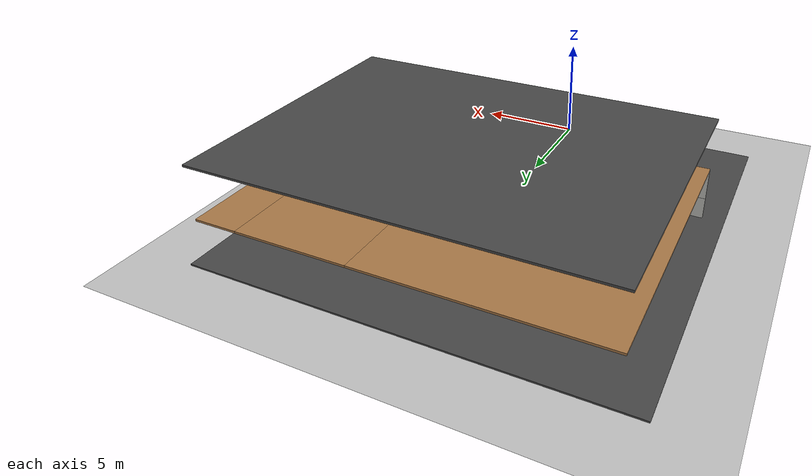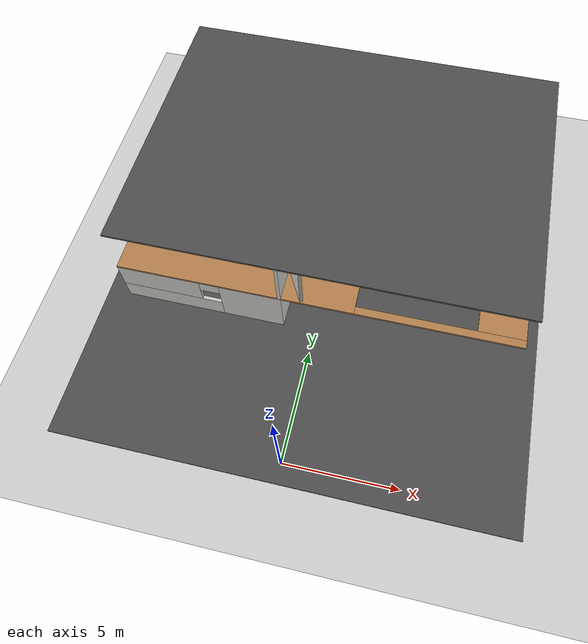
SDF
<sdf version="1.6">
 <world name="default">
  <model name="ground_plane">
   <static>1</static>
   <link name="link">
    <collision name="collision">
     <geometry><plane><normal>0 0 1</normal><size>100 100</size></plane></geometry>
     <surface>
      <contact><collide_bitmask>65535</collide_bitmask></contact>
      <friction><ode><mu>100</mu><mu2>50</mu2></ode></friction>
     </surface>
    </collision>
    <visual name="visual">
     <cast_shadows>0</cast_shadows>
     <geometry><plane><normal>0 0 1</normal><size>100 100</size></plane></geometry>
     <material>
      <script><uri>file://media/materials/scripts/gazebo.material</uri><name>Gazebo/Grey</name></script>
     </material>
    </visual>
   </link>
  </model>
  <model name="asphalt_plane">
   <static>1</static>
   <link name="link">
    <collision name="collision"><geometry><box><size>18.0246 12.9845 0.1</size></box></geometry></collision>
    <visual name="visual">
     <cast_shadows>0</cast_shadows>
     <geometry><box><size>18.0246 12.9845 0.1</size></box></geometry>
     <material>
      <script>
       <uri>model://asphalt_plane/materials/scripts</uri>
       <uri>model://asphalt_plane/materials/textures</uri>
       <name>vrc/asphalt</name>
      </script>
     </material>
    </visual>
   </link>
   <pose>0.009253 12.617 5.05625 0 -0 0</pose>
  </model>
  <model name="Indoor_Scenario1">
   <pose>0.016123 12.6195 0 0 -0 0</pose>
   <link name="Floor_0">
    <pose>-0 -0 2.5 0 -0 0</pose>
    <visual name="Floor_0_Visual_0">
     <pose>-3.6411 0 0.05 0 -0 0</pose>
     <geometry><box><size>10.7178 13 0.1</size></box></geometry>
     <material>
      <script><uri>file://media/materials/scripts/gazebo.material</uri><name>Gazebo/Wood</name></script>
      <ambient>1 1 1 1</ambient>
     </material>
     <meta><layer>1</layer></meta>
    </visual>
    <collision name="Floor_0_Collision_0">
     <geometry><box><size>10.7178 13 0.1</size></box></geometry>
     <pose>-3.6411 0 0.05 0 -0 0</pose>
    </collision>
    <visual name="Floor_0_Visual_1">
     <pose>5.3589 -6.32413 0.05 0 -0 0</pose>
     <geometry><box><size>7.2822 0.351742 0.1</size></box></geometry>
     <material>
      <script><uri>file://media/materials/scripts/gazebo.material</uri><name>Gazebo/Wood</name></script>
      <ambient>1 1 1 1</ambient>
     </material>
     <meta><layer>1</layer></meta>
    </visual>
    <collision name="Floor_0_Collision_1">
     <geometry><box><size>7.2822 0.351742 0.1</size></box></geometry>
     <pose>5.3589 -6.32413 0.05 0 -0 0</pose>
    </collision>
    <visual name="Floor_0_Visual_2">
     <pose>7.97998 0.175871 0.05 0 -0 0</pose>
     <geometry><box><size>2.04005 12.6483 0.1</size></box></geometry>
     <material>
      <script><uri>file://media/materials/scripts/gazebo.material</uri><name>Gazebo/Wood</name></script>
      <ambient>1 1 1 1</ambient>
     </material>
     <meta><layer>1</layer></meta>
    </visual>
    <collision name="Floor_0_Collision_2">
     <geometry><box><size>2.04005 12.6483 0.1</size></box></geometry>
     <pose>7.97998 0.175871 0.05 0 -0 0</pose>
    </collision>
    <visual name="Floor_0_Visual_3">
     <pose>4.33888 1.02587 0.05 0 -0 0</pose>
     <geometry><box><size>5.24215 10.9483 0.1</size></box></geometry>
     <material>
      <script><uri>file://media/materials/scripts/gazebo.material</uri><name>Gazebo/Wood</name></script>
      <ambient>1 1 1 1</ambient>
     </material>
     <meta><layer>1</layer></meta>
    </visual>
    <collision name="Floor_0_Collision_3">
     <geometry><box><size>5.24215 10.9483 0.1</size></box></geometry>
     <pose>4.33888 1.02587 0.05 0 -0 0</pose>
    </collision>
   </link>
   <link name="Wall_0">
    <pose>-5.25 -6.425 0 0 -0 3.14159</pose>
    <visual name="Wall_0_Visual_0">
     <pose>-2.33577 0 1.25 0 -0 0</pose>
     <geometry><box><size>2.82847 0.15 2.5</size></box></geometry>
     <material>
      <script><uri>file://media/materials/scripts/gazebo.material</uri><name>Gazebo/CeilingTiled</name></script>
      <ambient>0.647059 0.505882 0.309804 1</ambient>
     </material>
     <meta><layer>0</layer></meta>
    </visual>
    <collision name="Wall_0_Collision_0">
     <geometry><box><size>2.82847 0.15 2.5</size></box></geometry>
     <pose>-2.33577 0 1.25 0 -0 0</pose>
    </collision>
    <visual name="Wall_0_Visual_1">
     <pose>1.41423 0 0.55 0 -0 0</pose>
     <geometry><box><size>4.67153 0.15 1.1</size></box></geometry>
     <material>
      <script><uri>file://media/materials/scripts/gazebo.material</uri><name>Gazebo/CeilingTiled</name></script>
      <ambient>0.647059 0.505882 0.309804 1</ambient>
     </material>
     <meta><layer>0</layer></meta>
    </visual>
    <collision name="Wall_0_Collision_1">
     <geometry><box><size>4.67153 0.15 1.1</size></box></geometry>
     <pose>1.41423 0 0.55 0 -0 0</pose>
    </collision>
    <visual name="Wall_0_Visual_2">
     <pose>1.86423 0 1.8 0 -0 0</pose>
     <geometry><box><size>3.77153 0.15 1.4</size></box></geometry>
     <material>
      <script><uri>file://media/materials/scripts/gazebo.material</uri><name>Gazebo/CeilingTiled</name></script>
      <ambient>0.647059 0.505882 0.309804 1</ambient>
     </material>
     <meta><layer>0</layer></meta>
    </visual>
    <collision name="Wall_0_Collision_2">
     <geometry><box><size>3.77153 0.15 1.4</size></box></geometry>
     <pose>1.86423 0 1.8 0 -0 0</pose>
    </collision>
    <visual name="Wall_0_Visual_3">
     <pose>-0.471532 0 2.2 0 -0 0</pose>
     <geometry><box><size>0.9 0.15 0.6</size></box></geometry>
     <material>
      <script><uri>file://media/materials/scripts/gazebo.material</uri><name>Gazebo/CeilingTiled</name></script>
      <ambient>0.647059 0.505882 0.309804 1</ambient>
     </material>
     <meta><layer>0</layer></meta>
    </visual>
    <collision name="Wall_0_Collision_3">
     <geometry><box><size>0.9 0.15 0.6</size></box></geometry>
     <pose>-0.471532 0 2.2 0 -0 0</pose>
    </collision>
   </link>
   <link name="Wall_10">
    <collision name="Wall_10_Collision">
     <geometry><box><size>4.25 0.15 2.5</size></box></geometry>
     <pose>0 0 1.25 0 -0 0</pose>
    </collision>
    <visual name="Wall_10_Visual">
     <pose>0 0 1.25 0 -0 0</pose>
     <geometry><box><size>4.25 0.15 2.5</size></box></geometry>
     <material>
      <script><uri>file://media/materials/scripts/gazebo.material</uri><name>Gazebo/CeilingTiled</name></script>
      <ambient>0.647059 0.505882 0.309804 1</ambient>
     </material>
     <meta><layer>0</layer></meta>
    </visual>
    <pose>-1.575 -4.375 0 0 -0 1.5708</pose>
   </link>
   <link name="Wall_12">
    <collision name="Wall_12_Collision">
     <geometry><box><size>2 0.15 2.5</size></box></geometry>
     <pose>0 0 1.25 0 -0 0</pose>
    </collision>
    <visual name="Wall_12_Visual">
     <pose>0 0 1.25 0 -0 0</pose>
     <geometry><box><size>2 0.15 2.5</size></box></geometry>
     <material>
      <script><uri>file://media/materials/scripts/gazebo.material</uri><name>Gazebo/CeilingTiled</name></script>
      <ambient>1 1 1 1</ambient>
     </material>
     <meta><layer>0</layer></meta>
    </visual>
    <pose>-2.5 -2.325 0 0 -0 3.14159</pose>
   </link>
   <link name="Wall_63">
    <collision name="Wall_63_Collision">
     <geometry><box><size>4.25 0.15 2.5</size></box></geometry>
     <pose>0 0 1.25 0 -0 0</pose>
    </collision>
    <visual name="Wall_63_Visual">
     <pose>0 0 1.25 0 -0 0</pose>
     <geometry><box><size>4.25 0.15 2.5</size></box></geometry>
     <material>
      <script><uri>file://media/materials/scripts/gazebo.material</uri><name>Gazebo/CeilingTiled</name></script>
      <ambient>1 1 1 1</ambient>
     </material>
     <meta><layer>1</layer></meta>
    </visual>
    <pose>-1.575 -4.375 2.5 0 -0 1.5708</pose>
   </link>
   <link name="Wall_64">
    <collision name="Wall_64_Collision">
     <geometry><box><size>3 0.15 2.5</size></box></geometry>
     <pose>0 0 1.25 0 -0 0</pose>
    </collision>
    <visual name="Wall_64_Visual">
     <pose>0 0 1.25 0 -0 0</pose>
     <geometry><box><size>3 0.15 2.5</size></box></geometry>
     <material>
      <script><uri>file://media/materials/scripts/gazebo.material</uri><name>Gazebo/CeilingTiled</name></script>
      <ambient>1 1 1 1</ambient>
     </material>
     <meta><layer>1</layer></meta>
    </visual>
    <pose>-3 -2.325 2.5 0 -0 3.14159</pose>
   </link>
   <link name="Wall_89">
    <collision name="Wall_89_Collision">
     <geometry><box><size>2 0.15 2.5</size></box></geometry>
     <pose>0 0 1.25 0 -0 0</pose>
    </collision>
    <visual name="Wall_89_Visual">
     <pose>0 0 1.25 0 -0 0</pose>
     <geometry><box><size>2 0.15 2.5</size></box></geometry>
     <material>
      <script><uri>file://media/materials/scripts/gazebo.material</uri><name>Gazebo/CeilingTiled</name></script>
      <ambient>1 1 1 1</ambient>
     </material>
     <meta><layer>1</layer></meta>
    </visual>
    <pose>-1.08545 -5.56938 2.5 0 -0 -1.0472</pose>
   </link>
   <static>1</static>
  </model>
  <model name="asphalt_plane_0">
   <static>1</static>
   <link name="link">
    <collision name="collision"><geometry><box><size>20 20 0.1</size></box></geometry></collision>
    <visual name="visual">
     <cast_shadows>0</cast_shadows>
     <geometry><box><size>20 20 0.1</size></box></geometry>
     <material>
      <script>
       <uri>model://asphalt_plane/materials/scripts</uri>
       <uri>model://asphalt_plane/materials/textures</uri>
       <name>vrc/asphalt</name>
      </script>
     </material>
    </visual>
   </link>
   <pose>-0.003889 9.12511 0 0 -0 0</pose>
  </model>
  <model name="marker34_box">
   <link name="marker">
    <inertial>
     <mass>0.1</mass>
     <inertia><ixx>0</ixx><ixy>0</ixy><ixz>0</ixz><iyy>0</iyy><iyz>0</iyz><izz>0</izz></inertia>
    </inertial>
    <self_collide>1</self_collide>
    <pose>0 0 0.25 0 -0 0</pose>
    <visual name="visual">
     <geometry><box><size>1 0.001 1</size></box></geometry>
     <material>
      <script>
       <uri>/root/model_editor_models/marker34/material/scripts</uri>
       <uri>/root/model_editor_models/marker34/material/textures</uri>
       <name>Aruco/marker34</name>
      </script>
      <shader type="pixel"><normal_map>__default__</normal_map></shader>
      <emissive>0 0 0 1</emissive>
      <ambient>1 1 1 1</ambient>
      <diffuse>1 1 1 1</diffuse>
      <specular>0 0 0 1</specular>
     </material>
    </visual>
    <collision name="collision">
     <geometry><box><size>1 0.001 1</size></box></geometry>
     <surface>
      <friction>
       <ode><mu>1</mu><mu2>1</mu2><fdir1>0 0 0</fdir1><slip1>0</slip1><slip2>0</slip2></ode>
       <torsional>
        <coefficient>1</coefficient>
        <patch_radius>0</patch_radius>
        <surface_radius>0</surface_radius>
        <use_patch_radius>1</use_patch_radius>
        <ode><slip>0</slip></ode>
       </torsional>
      </friction>
      <bounce><restitution_coefficient>0</restitution_coefficient><threshold>1e+06</threshold></bounce>
      <contact>
       <collide_without_contact>0</collide_without_contact>
       <collide_without_contact_bitmask>1</collide_without_contact_bitmask>
       <collide_bitmask>1</collide_bitmask>
       <ode>
        <soft_cfm>0</soft_cfm>
        <soft_erp>0.2</soft_erp>
        <kp>1e+13</kp>
        <kd>1</kd>
        <max_vel>0.01</max_vel>
        <min_depth>0</min_depth>
       </ode>
       <bullet>
        <split_impulse>1</split_impulse>
        <split_impulse_penetration_threshold>-0.01</split_impulse_penetration_threshold>
        <soft_cfm>0</soft_cfm>
        <soft_erp>0.2</soft_erp>
        <kp>1e+13</kp>
        <kd>1</kd>
       </bullet>
      </contact>
     </surface>
    </collision>
   </link>
   <link name="link_1">
    <inertial>
     <mass>1</mass>
     <inertia>
      <ixx>0.166667</ixx>
      <ixy>0</ixy>
      <ixz>0</ixz>
      <iyy>0.166667</iyy>
      <iyz>0</iyz>
      <izz>0.166667</izz>
     </inertia>
    </inertial>
    <pose>0 0.11 0.25 0 -0 0</pose>
    <visual name="visual">
     <geometry><box><size>1 0.2 1</size></box></geometry>
     <material>
      <lighting>1</lighting>
      <script><uri>file://media/materials/scripts/gazebo.material</uri><name>Gazebo/Grey</name></script>
      <shader type="pixel"><normal_map>__default__</normal_map></shader>
      <emissive>0 0 0 1</emissive>
      <ambient>0.3 0.3 0.3 1</ambient>
      <diffuse>0.7 0.7 0.7 1</diffuse>
      <specular>0.01 0.01 0.01 1</specular>
     </material>
    </visual>
    <collision name="collision">
     <geometry><box><size>1 0.2 1</size></box></geometry>
     <surface>
      <friction>
       <ode><mu>1</mu><mu2>1</mu2><fdir1>0 0 0</fdir1><slip1>0</slip1><slip2>0</slip2></ode>
       <torsional>
        <coefficient>1</coefficient>
        <patch_radius>0</patch_radius>
        <surface_radius>0</surface_radius>
        <use_patch_radius>1</use_patch_radius>
        <ode><slip>0</slip></ode>
       </torsional>
      </friction>
      <bounce><restitution_coefficient>0</restitution_coefficient><threshold>1e+06</threshold></bounce>
      <contact>
       <collide_without_contact>0</collide_without_contact>
       <collide_without_contact_bitmask>1</collide_without_contact_bitmask>
       <collide_bitmask>1</collide_bitmask>
       <ode>
        <soft_cfm>0</soft_cfm>
        <soft_erp>0.2</soft_erp>
        <kp>1e+13</kp>
        <kd>1</kd>
        <max_vel>0.01</max_vel>
        <min_depth>0</min_depth>
       </ode>
       <bullet>
        <split_impulse>1</split_impulse>
        <split_impulse_penetration_threshold>-0.01</split_impulse_penetration_threshold>
        <soft_cfm>0</soft_cfm>
        <soft_erp>0.2</soft_erp>
        <kp>1e+13</kp>
        <kd>1</kd>
       </bullet>
      </contact>
     </surface>
    </collision>
   </link>
   <joint name="link_1_JOINT_3" type="fixed">
    <parent>link_1</parent>
    <child>marker</child>
    <physics>
     <ode><limit><cfm>0</cfm><erp>0.2</erp></limit><suspension><cfm>0</cfm><erp>0.2</erp></suspension></ode>
    </physics>
   </joint>
   <static>0</static>
   <pose>-1.90446 9.5885 0.300001 0 2e-06 -1.54881</pose>
  </model>
 </world>
</sdf>
